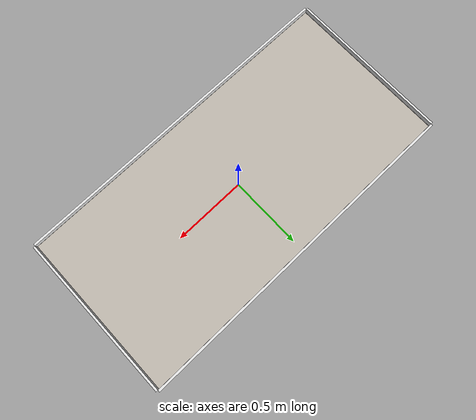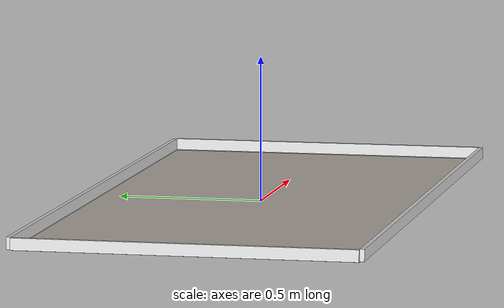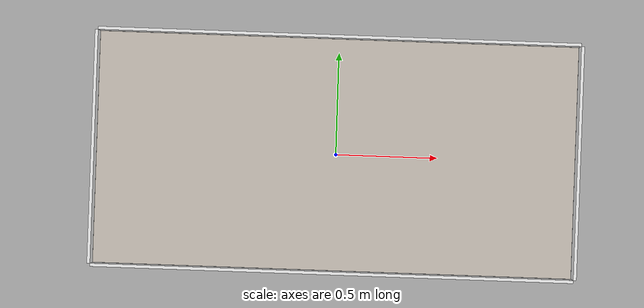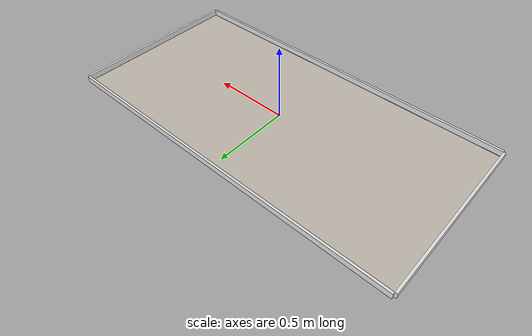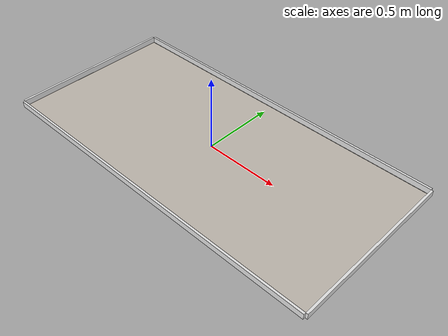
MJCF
<mujoco model="wro_2026_junior_heritage_heroes">
  <compiler angle="degree" coordinate="local"/>

  <option timestep="0.001" iterations="20" solver="Newton"/>

  <asset>
    <texture name="mat_tex" type="2d" file="mat.png"/>
    <material name="mat" texture="mat_tex" texrepeat="1 1"
              specular="0" shininess="0" reflectance="0"/>
    <material name="wall" rgba="0.90 0.90 0.90 1"/>

    <!-- LEGO prop colours -->
    <material name="lego_red"     rgba="0.85 0.10 0.10 1"/>
    <material name="lego_yellow"  rgba="0.95 0.80 0.10 1"/>
    <material name="lego_green"   rgba="0.15 0.70 0.25 1"/>
    <material name="lego_blue"    rgba="0.10 0.30 0.80 1"/>
    <material name="lego_white"   rgba="0.95 0.95 0.95 1"/>
    <material name="lego_black"   rgba="0.08 0.08 0.08 1"/>
    <material name="lego_brown"   rgba="0.50 0.30 0.15 1"/>
    <material name="lego_gray"    rgba="0.55 0.55 0.58 1"/>
  </asset>

  <worldbody>
    <light pos=" 0.6 0 1.6" dir="0 0 -1" diffuse="0.95 0.95 0.95"/>
    <light pos="-0.6 0 1.6" dir="0 0 -1" diffuse="0.65 0.65 0.65"/>

    <!-- ===== MAT (2.362 × 1.143 m, printed texture) ===== -->
    <geom name="mat" type="plane" size="1.181 0.5715 0.01"
          material="mat" friction="0.8 0.02 0.0001"/>

    <!-- Border walls. -->
    <geom name="wall_n" type="box" pos=" 0     0.579  0.02"
          size="1.181 0.0075 0.02" material="wall"/>
    <geom name="wall_s" type="box" pos=" 0    -0.579  0.02"
          size="1.181 0.0075 0.02" material="wall"/>
    <geom name="wall_e" type="box" pos=" 1.188 0      0.02"
          size="0.0075 0.5715 0.02" material="wall"/>
    <geom name="wall_w" type="box" pos="-1.188 0      0.02"
          size="0.0075 0.5715 0.02" material="wall"/>

    <!-- Mission 3.5 bonus: parrot + 2 barriers (don't damage). -->
    <lego_prop name="parrot"    ldr="props/parrot.ldr"  pos="-0.55 0.35 0.0" mass="0.050"/>
    <lego_prop name="barrier_a" ldr="props/barrier.ldr" pos="-0.30 0.10 0.0" mass="0.100" color="red"/>
    <lego_prop name="barrier_b" ldr="props/barrier.ldr" pos="0.30 -0.05 0.0" mass="0.100" color="white"/>

    <!-- Mission 3.1: 4 visitors (red / blue / green / black). -->
    <lego_prop name="visitor_red"   ldr="props/visitor.ldr" pos="0.65 -0.45 0.0" mass="0.040" color="red"/>
    <lego_prop name="visitor_blue"  ldr="props/visitor.ldr" pos="0.75 -0.45 0.0" mass="0.040" color="blue"/>
    <lego_prop name="visitor_green" ldr="props/visitor.ldr" pos="0.85 -0.45 0.0" mass="0.040" color="green"/>
    <lego_prop name="visitor_black" ldr="props/visitor.ldr" pos="0.95 -0.45 0.0" mass="0.040" color="black"/>

    <!-- Mission 3.2: 2 yellow towers + 2 red towers. -->
    <lego_prop name="yellow_tower_a" ldr="props/yellow_tower.ldr" pos="-0.10 0.30 0.0" mass="0.080"/>
    <lego_prop name="yellow_tower_b" ldr="props/yellow_tower.ldr" pos="0.10 0.30 0.0"  mass="0.080"/>
    <lego_prop name="red_tower_a"    ldr="props/red_tower.ldr"    pos="0.30 0.30 0.0"  mass="0.070"/>
    <lego_prop name="red_tower_b"    ldr="props/red_tower.ldr"    pos="0.50 0.30 0.0"  mass="0.070"/>

    <lego_prop name="artefact_red"    ldr="props/artefact.ldr" pos="0.05 -0.05 0.0" mass="0.050" color="red"/>
    <lego_prop name="artefact_yellow" ldr="props/artefact.ldr" pos="0.15 -0.05 0.0" mass="0.050" color="yellow"/>
    <lego_prop name="artefact_green"  ldr="props/artefact.ldr" pos="0.05 -0.18 0.0" mass="0.050" color="green"/>
    <lego_prop name="artefact_blue"   ldr="props/artefact.ldr" pos="0.15 -0.18 0.0" mass="0.050" color="blue"/>
    <lego_prop name="artefact_black"  ldr="props/artefact.ldr" pos="0.10 -0.30 0.0" mass="0.050" color="black"/>

    <!-- Mission 3.4: 10 dirt particles. Same .ldr (a single 1x2
         tile) instantiated 10 times. F3.J randomization permutes
         their positions on the cobblestone area each round. -->
    <lego_prop name="dirt_1"  ldr="props/dirt.ldr" pos="0.85 0.10 0.0"  mass="0.003" color="black"/>
    <lego_prop name="dirt_2"  ldr="props/dirt.ldr" pos="0.90 0.05 0.0"  mass="0.003" color="black"/>
    <lego_prop name="dirt_3"  ldr="props/dirt.ldr" pos="0.95 -0.02 0.0" mass="0.003" color="black"/>
    <lego_prop name="dirt_4"  ldr="props/dirt.ldr" pos="0.98 0.08 0.0"  mass="0.003" color="black"/>
    <lego_prop name="dirt_5"  ldr="props/dirt.ldr" pos="0.86 -0.05 0.0" mass="0.003" color="black"/>
    <lego_prop name="dirt_6"  ldr="props/dirt.ldr" pos="0.92 -0.15 0.0" mass="0.003" color="black"/>
    <lego_prop name="dirt_7"  ldr="props/dirt.ldr" pos="1.00 0.12 0.0"  mass="0.003" color="black"/>
    <lego_prop name="dirt_8"  ldr="props/dirt.ldr" pos="0.83 0.18 0.0"  mass="0.003" color="black"/>
    <lego_prop name="dirt_9"  ldr="props/dirt.ldr" pos="0.88 0.22 0.0"  mass="0.003" color="black"/>
    <lego_prop name="dirt_10" ldr="props/dirt.ldr" pos="1.02 -0.10 0.0" mass="0.003" color="black"/>

    <!-- Overhead camera for scene preview. -->
    <camera name="overhead" pos="0 0 2.6" xyaxes="1 0 0 0 1 0"/>
  </worldbody>
</mujoco>
